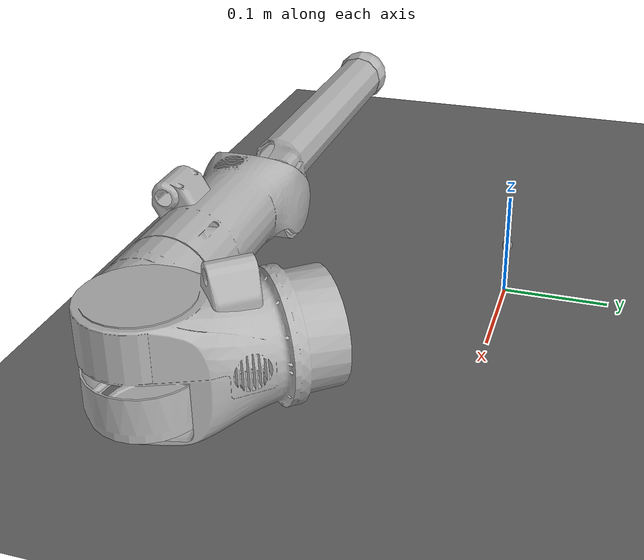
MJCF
<mujoco model="Alexander">
  <default>
    <joint limited="true" damping="0.01" armature="0.01" frictionloss="0.01" />
    <geom condim="4" contype="1" conaffinity="15" friction="0.9 0.2 0.2" solref="0.001 2" />
    <motor ctrllimited="true" />
    <equality solref="0.001 2" />
    <default class="visualgeom">
      <geom material="visualgeom" condim="1" contype="0" conaffinity="0" />
    </default>
  </default>

  <compiler angle="radian" meshdir="../meshes/" eulerseq="zyx" autolimits="true" />

  <asset>
    <texture name="texplane" type="2d" builtin="checker" rgb1=".0 .0 .0" rgb2=".8 .8 .8" width="100" height="100" />
    <material name="matplane" reflectance="0." texture="texplane" texrepeat="1 1" texuniform="true" />
    <material name="default_material" rgba="0.7 0.7 0.7 1" />
    <mesh name="RightShoulderPitchLink.obj" file="cycloidal_arm/RightShoulderPitchLink.obj" />
    <mesh name="RightShoulderRollLink_shortBicep.obj" file="cycloidal_arm/RightShoulderRollLink_shortBicep.obj" />
    <mesh name="RightShoulderYawLink.obj" file="cycloidal_arm/RightShoulderYawLink.obj" />
    <mesh name="RIGHT_ELBOW_PITCH_LINK_413mm_LENGTH.obj" file="cycloidal_arm/RIGHT_ELBOW_PITCH_LINK_413mm_LENGTH.obj" />
  </asset>

  <worldbody>
    <light directional="true" diffuse="0.4 0.4 0.4" specular="0.1 0.1 0.1" pos="0 0 5.0" dir="0 0 -1" castshadow="false" />
    <light directional="true" diffuse="0.6 0.6 0.6" specular="0.2 0.2 0.2" pos="0 0 4" dir="0 0 -1" />
    <geom name="ground" type="plane" pos="0 0 0" size="10 10 0.001" quat="1 0 0 0" material="matplane" condim="3" conaffinity="15" />
    <body name="root" pos="0 0 0.05" quat="1 0 1 0">
      <freejoint name="root" />
      <site name="root_site" pos="0 0 0" quat="1 0 0 0" />
      <body name="TORSO_LINK" pos="0 0 0" quat="1 0 0 0">
        <inertial pos="0 0 0" quat="1.0 0.0 0.0 0.0" mass="0.001" diaginertia="1e-05 1e-05 1e-05" />
        <body name="RIGHT_SHOULDER_Y_LINK" pos="-0.025 -0.1 0.214" quat="0.9396925696192966 -0.34202028390474665 0.0 0.0">
          <joint name="RIGHT_SHOULDER_Y" type="hinge" range="-3.141592 1.22173" axis="0.0 1.0 0.0" />
          <inertial pos="-0.00264 -0.12135 -0.006824" quat="1.0 0.0 0.0 0.0" mass="2.99" diaginertia="0.0110394 0.0051097 0.0116925" />
          <geom name="RIGHT_SHOULDER_Y_LINK_visual_0" pos="0.0 0.0 0.0" quat="1.0 0.0 0.0 0.0" material="default_material" type="mesh" mesh="RightShoulderPitchLink.obj" />
          <body name="RIGHT_SHOULDER_X_LINK" pos="0.0 -0.15676000 -0.01300000" quat="0.9396925696192966 0.34202028390474665 0.0 0.0">
            <joint name="RIGHT_SHOULDER_X" type="hinge" range="-2.79253 0.349066" axis="1 0 0" />
            <inertial pos="0.012489 -0.01882 -0.0385" quat="1.0 0.0 0.0 0.0" mass="0.972" diaginertia="0.002949 0.0023603 0.0014377" />
            <geom name="RIGHT_SHOULDER_X_LINK_visual_0" pos="0.0 0.0 0.0" quat="1.0 0.0 0.0 0.0" material="default_material" type="mesh" mesh="RightShoulderRollLink_shortBicep.obj" />
            <body name="RIGHT_SHOULDER_Z_LINK" pos="0.0 -0.035 0.0" quat="1.0 0.0 0.0 0.0">
              <joint name="RIGHT_SHOULDER_Z" type="hinge" range="-1.22173 1.91986" axis="0.0 0.0 1.0" />
              <inertial pos="0.00524 -0.00274 -0.21745" quat="1.0 0.0 0.0 0.0" mass="2.91" diaginertia="0.0248699 0.0245973 0.0029883" />
              <geom name="RIGHT_SHOULDER_Z_LINK_visual_0" pos="0.0 0.0 0.0867" quat="1.0 0.0 0.0 0.0" material="default_material" type="mesh" mesh="RightShoulderYawLink.obj" />
              <body name="RIGHT_ELBOW_PITCH_LINK" pos="0.015 0.0 -0.3127" quat="1.0 0.0 0.0 0.0">
                <joint name="RIGHT_ELBOW_Y" type="hinge" range="-2.35619 0.174532925" axis="0.0 1.0 0.0" />
                <inertial pos="-0.01090935 0.01147189 -0.10388715" quat="1.0 0.0 0.0 0.0" mass="0.616" diaginertia="0.00760733 0.00767556 0.0004554" />
                <geom name="RIGHT_ELBOW_PITCH_LINK_visual_0" pos="0.0 0.0 0.0" quat="1.0 0.0 0.0 0.0" material="default_material" type="mesh" mesh="RIGHT_ELBOW_PITCH_LINK_413mm_LENGTH.obj" />
              </body>
            </body>
          </body>
        </body>
      </body>
    </body>
  </worldbody>

  <actuator>
    <position name="RIGHT_SHOULDER_Y_ctrl" joint="RIGHT_SHOULDER_Y" kp="40.00000000" kv="2.00000000" forcerange="-1000.00000000 1000.00000000" forcelimited="true" ctrlrange="-3.141592 1.22173" ctrllimited="true" />
    <position name="RIGHT_SHOULDER_X_ctrl" joint="RIGHT_SHOULDER_X" kp="40.00000000" kv="2.00000000" forcerange="-1000.00000000 1000.00000000" forcelimited="true" ctrlrange="-2.79253 0.349066" ctrllimited="true" />
    <position name="RIGHT_SHOULDER_Z_ctrl" joint="RIGHT_SHOULDER_Z" kp="40.00000000" kv="2.00000000" forcerange="-1000.00000000 1000.00000000" forcelimited="true" ctrlrange="-1.22173 1.91986" ctrllimited="true" />
    <position name="RIGHT_ELBOW_Y_ctrl" joint="RIGHT_ELBOW_Y" kp="40.00000000" kv="2.00000000" forcerange="-1000.00000000 1000.00000000" forcelimited="true" ctrlrange="-2.35619 0.174532925" ctrllimited="true" />
  </actuator>

  <sensor>
    <framepos name="base_link_pos" objtype="site" objname="root_site" />
    <framequat name="base_link_quat" objtype="site" objname="root_site" />
    <framelinvel name="base_link_vel" objtype="site" objname="root_site" />
    <frameangvel name="base_link_ang_vel" objtype="site" objname="root_site" />
  </sensor>
</mujoco>
